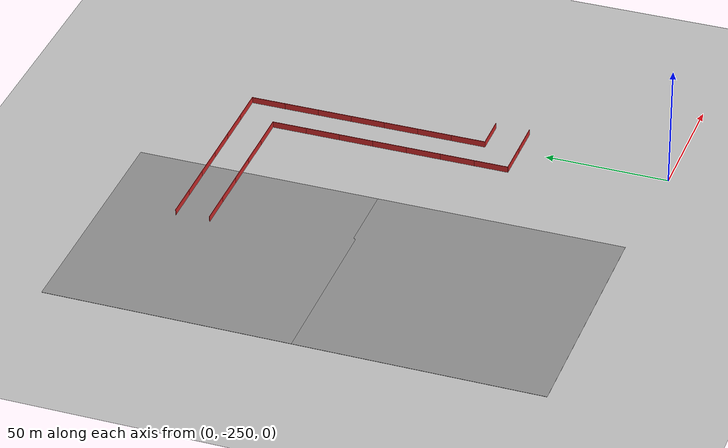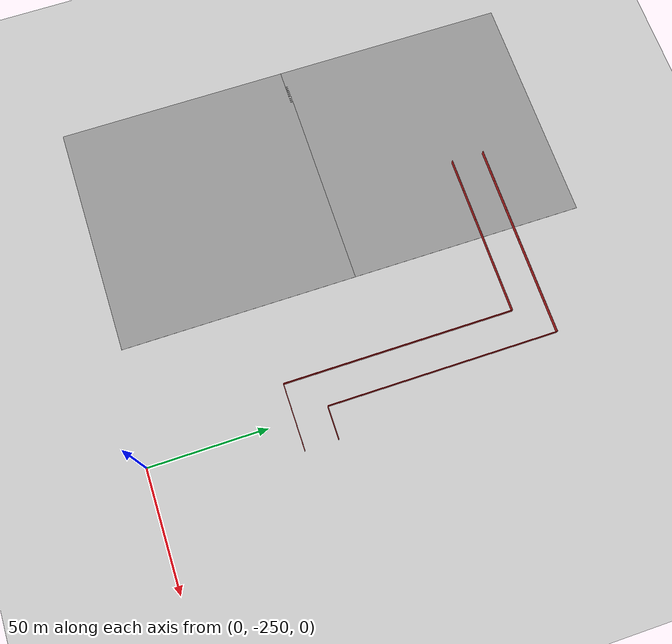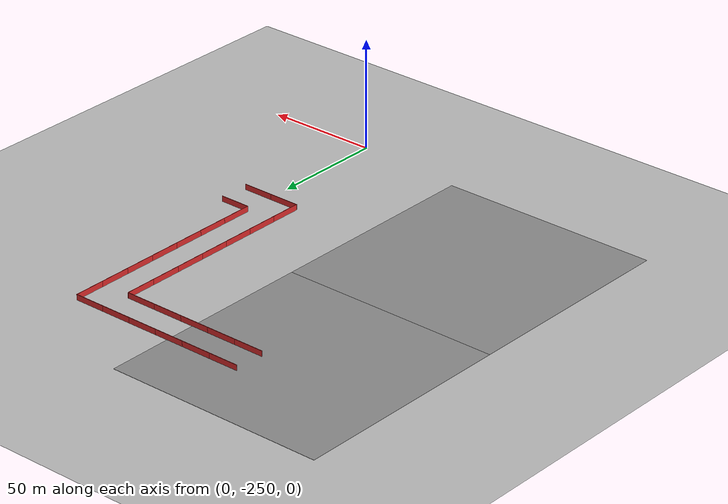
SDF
<sdf version="1.4">
 <world name="default">
  <model name="right_angle_turn_0">
   <link name="Wall_0">
    <collision name="Wall_0_Collision">
     <geometry><box><size>14.1 0.2 2.5</size></box></geometry>
     <pose>0 0 1.25 0 -0 0</pose>
    </collision>
    <visual name="Wall_0_Visual">
     <pose>0 0 1.25 0 -0 0</pose>
     <geometry><box><size>14.1 0.2 2.5</size></box></geometry>
     <material>
      <script>
       <uri>model://materials/scripts</uri>
       <uri>model://materials/textures</uri>
       <name>vrc/red_wall_x4</name>
      </script>
     </material>
    </visual>
    <velocity_decay><linear>0</linear><angular>0</angular></velocity_decay>
    <pose>0 -6.95 0 0 0 -1.5708</pose>
   </link>
   <link name="Wall_10">
    <collision name="Wall_10_Collision">
     <geometry><box><size>13.8 0.2 2.5</size></box></geometry>
     <pose>0 0 1.25 0 -0 0</pose>
    </collision>
    <visual name="Wall_10_Visual">
     <pose>0 0 1.25 0 -0 0</pose>
     <geometry><box><size>13.8 0.2 2.5</size></box></geometry>
     <material>
      <script>
       <uri>model://materials/scripts</uri>
       <uri>model://materials/textures</uri>
       <name>vrc/red_wall_x4</name>
      </script>
     </material>
    </visual>
    <velocity_decay><linear>0</linear><angular>0</angular></velocity_decay>
    <pose>14 7 0 0 0 -1.5708</pose>
   </link>
   <link name="Wall_2">
    <collision name="Wall_2_Collision">
     <geometry><box><size>13.9 0.2 2.5</size></box></geometry>
     <pose>0 0 1.25 0 -0 0</pose>
    </collision>
    <visual name="Wall_2_Visual">
     <pose>0 0 1.25 0 -0 0</pose>
     <geometry><box><size>13.9 0.2 2.5</size></box></geometry>
     <material>
      <script>
       <uri>model://materials/scripts</uri>
       <uri>model://materials/textures</uri>
       <name>vrc/red_wall_x4</name>
      </script>
     </material>
    </visual>
    <velocity_decay><linear>0</linear><angular>0</angular></velocity_decay>
    <pose>-7.05 0 0 0 -0 3.14159</pose>
   </link>
   <link name="Wall_4">
    <collision name="Wall_4_Collision">
     <geometry><box><size>14.1 0.2 2.5</size></box></geometry>
     <pose>0 0 1.25 0 -0 0</pose>
    </collision>
    <visual name="Wall_4_Visual">
     <pose>0 0 1.25 0 -0 0</pose>
     <geometry><box><size>14.1 0.2 2.5</size></box></geometry>
     <material>
      <script>
       <uri>model://materials/scripts</uri>
       <uri>model://materials/textures</uri>
       <name>vrc/red_wall_x4</name>
      </script>
     </material>
    </visual>
    <velocity_decay><linear>0</linear><angular>0</angular></velocity_decay>
    <pose>14 -6.95 0 0 -0 1.5708</pose>
   </link>
   <link name="Wall_6">
    <collision name="Wall_6_Collision">
     <geometry><box><size>14.1 0.2 2.5</size></box></geometry>
     <pose>0 0 1.25 0 -0 0</pose>
    </collision>
    <visual name="Wall_6_Visual">
     <pose>0 0 1.25 0 -0 0</pose>
     <geometry><box><size>14.1 0.2 2.5</size></box></geometry>
     <material>
      <script>
       <uri>model://materials/scripts</uri>
       <uri>model://materials/textures</uri>
       <name>vrc/red_wall_x4</name>
      </script>
     </material>
    </visual>
    <velocity_decay><linear>0</linear><angular>0</angular></velocity_decay>
    <pose>-6.95 14 0 0 -0 0</pose>
   </link>
   <link name="Wall_8">
    <collision name="Wall_8_Collision">
     <geometry><box><size>14 0.2 2.5</size></box></geometry>
     <pose>0 0 1.25 0 -0 0</pose>
    </collision>
    <visual name="Wall_8_Visual">
     <pose>0 0 1.25 0 -0 0</pose>
     <geometry><box><size>14 0.2 2.5</size></box></geometry>
     <material>
      <script>
       <uri>model://materials/scripts</uri>
       <uri>model://materials/textures</uri>
       <name>vrc/red_wall_x4</name>
      </script>
     </material>
    </visual>
    <velocity_decay><linear>0</linear><angular>0</angular></velocity_decay>
    <pose>7.1 14 0 0 -0 0</pose>
   </link>
   <static>1</static>
   <pose>-1 -175 0 0 -0 3.14159</pose>
  </model>
  <model name="staright_28m_2">
   <link name="Wall_26">
    <collision name="Wall_26_Collision">
     <geometry><box><size>14 0.2 2.5</size></box></geometry>
     <pose>0 0 1.25 0 -0 0</pose>
    </collision>
    <visual name="Wall_26_Visual">
     <pose>0 0 1.25 0 -0 0</pose>
     <geometry><box><size>14 0.2 2.5</size></box></geometry>
     <material>
      <script>
       <uri>model://materials/scripts</uri>
       <uri>model://materials/textures</uri>
       <name>vrc/red_wall</name>
      </script>
     </material>
    </visual>
    <velocity_decay><linear>0</linear><angular>0</angular></velocity_decay>
    <pose>-7 -7 0 0 -0 0</pose>
   </link>
   <link name="Wall_28">
    <collision name="Wall_28_Collision">
     <geometry><box><size>14 0.2 2.5</size></box></geometry>
     <pose>0 0 1.25 0 -0 0</pose>
    </collision>
    <visual name="Wall_28_Visual">
     <pose>0 0 1.25 0 -0 0</pose>
     <geometry><box><size>14 0.2 2.5</size></box></geometry>
     <material>
      <script>
       <uri>model://materials/scripts</uri>
       <uri>model://materials/textures</uri>
       <name>vrc/red_wall</name>
      </script>
     </material>
    </visual>
    <velocity_decay><linear>0</linear><angular>0</angular></velocity_decay>
    <pose>-7 7 0 0 -0 0</pose>
   </link>
   <static>1</static>
   <link name="Wall_27">
    <collision name="Wall_26_Collision">
     <geometry><box><size>14 0.2 2.5</size></box></geometry>
     <pose>0 0 1.25 0 -0 0</pose>
    </collision>
    <visual name="Wall_26_Visual">
     <pose>0 0 1.25 0 -0 0</pose>
     <geometry><box><size>14 0.2 2.5</size></box></geometry>
     <material>
      <script>
       <uri>model://materials/scripts</uri>
       <uri>model://materials/textures</uri>
       <name>vrc/red_wall</name>
      </script>
     </material>
    </visual>
    <velocity_decay><linear>0</linear><angular>0</angular></velocity_decay>
    <pose>7 -7 0 0 -0 0</pose>
   </link>
   <link name="Wall_29">
    <collision name="Wall_28_Collision">
     <geometry><box><size>14 0.2 2.5</size></box></geometry>
     <pose>0 0 1.25 0 -0 0</pose>
    </collision>
    <visual name="Wall_28_Visual">
     <pose>0 0 1.25 0 -0 0</pose>
     <geometry><box><size>14 0.2 2.5</size></box></geometry>
     <material>
      <script>
       <uri>model://materials/scripts</uri>
       <uri>model://materials/textures</uri>
       <name>vrc/red_wall</name>
      </script>
     </material>
    </visual>
    <velocity_decay><linear>0</linear><angular>0</angular></velocity_decay>
    <pose>7 7 0 0 -0 0</pose>
   </link>
   <static>1</static>
   <pose>-8.00003 -119 0 0 0 -1.5708</pose>
  </model>
  <model name="right_angle_turn">
   <link name="Wall_0">
    <collision name="Wall_0_Collision">
     <geometry><box><size>14.1 0.2 2.5</size></box></geometry>
     <pose>0 0 1.25 0 -0 0</pose>
    </collision>
    <visual name="Wall_0_Visual">
     <pose>0 0 1.25 0 -0 0</pose>
     <geometry><box><size>14.1 0.2 2.5</size></box></geometry>
     <material>
      <script>
       <uri>model://materials/scripts</uri>
       <uri>model://materials/textures</uri>
       <name>vrc/red_wall_x4</name>
      </script>
     </material>
    </visual>
    <velocity_decay><linear>0</linear><angular>0</angular></velocity_decay>
    <pose>0 -6.95 0 0 0 -1.5708</pose>
   </link>
   <link name="Wall_10">
    <collision name="Wall_10_Collision">
     <geometry><box><size>13.8 0.2 2.5</size></box></geometry>
     <pose>0 0 1.25 0 -0 0</pose>
    </collision>
    <visual name="Wall_10_Visual">
     <pose>0 0 1.25 0 -0 0</pose>
     <geometry><box><size>13.8 0.2 2.5</size></box></geometry>
     <material>
      <script>
       <uri>model://materials/scripts</uri>
       <uri>model://materials/textures</uri>
       <name>vrc/red_wall_x4</name>
      </script>
     </material>
    </visual>
    <velocity_decay><linear>0</linear><angular>0</angular></velocity_decay>
    <pose>14 7 0 0 0 -1.5708</pose>
   </link>
   <link name="Wall_2">
    <collision name="Wall_2_Collision">
     <geometry><box><size>13.9 0.2 2.5</size></box></geometry>
     <pose>0 0 1.25 0 -0 0</pose>
    </collision>
    <visual name="Wall_2_Visual">
     <pose>0 0 1.25 0 -0 0</pose>
     <geometry><box><size>13.9 0.2 2.5</size></box></geometry>
     <material>
      <script>
       <uri>model://materials/scripts</uri>
       <uri>model://materials/textures</uri>
       <name>vrc/red_wall_x4</name>
      </script>
     </material>
    </visual>
    <velocity_decay><linear>0</linear><angular>0</angular></velocity_decay>
    <pose>-7.05 0 0 0 -0 3.14159</pose>
   </link>
   <link name="Wall_4">
    <collision name="Wall_4_Collision">
     <geometry><box><size>14.1 0.2 2.5</size></box></geometry>
     <pose>0 0 1.25 0 -0 0</pose>
    </collision>
    <visual name="Wall_4_Visual">
     <pose>0 0 1.25 0 -0 0</pose>
     <geometry><box><size>14.1 0.2 2.5</size></box></geometry>
     <material>
      <script>
       <uri>model://materials/scripts</uri>
       <uri>model://materials/textures</uri>
       <name>vrc/red_wall_x4</name>
      </script>
     </material>
    </visual>
    <velocity_decay><linear>0</linear><angular>0</angular></velocity_decay>
    <pose>14 -6.95 0 0 -0 1.5708</pose>
   </link>
   <link name="Wall_6">
    <collision name="Wall_6_Collision">
     <geometry><box><size>14.1 0.2 2.5</size></box></geometry>
     <pose>0 0 1.25 0 -0 0</pose>
    </collision>
    <visual name="Wall_6_Visual">
     <pose>0 0 1.25 0 -0 0</pose>
     <geometry><box><size>14.1 0.2 2.5</size></box></geometry>
     <material>
      <script>
       <uri>model://materials/scripts</uri>
       <uri>model://materials/textures</uri>
       <name>vrc/red_wall_x4</name>
      </script>
     </material>
    </visual>
    <velocity_decay><linear>0</linear><angular>0</angular></velocity_decay>
    <pose>-6.95 14 0 0 -0 0</pose>
   </link>
   <link name="Wall_8">
    <collision name="Wall_8_Collision">
     <geometry><box><size>14 0.2 2.5</size></box></geometry>
     <pose>0 0 1.25 0 -0 0</pose>
    </collision>
    <visual name="Wall_8_Visual">
     <pose>0 0 1.25 0 -0 0</pose>
     <geometry><box><size>14 0.2 2.5</size></box></geometry>
     <material>
      <script>
       <uri>model://materials/scripts</uri>
       <uri>model://materials/textures</uri>
       <name>vrc/red_wall_x4</name>
      </script>
     </material>
    </visual>
    <velocity_decay><linear>0</linear><angular>0</angular></velocity_decay>
    <pose>7.1 14 0 0 -0 0</pose>
   </link>
   <static>1</static>
   <pose>-15 -91 0 0 -0 0</pose>
  </model>
  <model name="staright_28m_9">
   <link name="Wall_26">
    <collision name="Wall_26_Collision">
     <geometry><box><size>14 0.2 2.5</size></box></geometry>
     <pose>0 0 1.25 0 -0 0</pose>
    </collision>
    <visual name="Wall_26_Visual">
     <pose>0 0 1.25 0 -0 0</pose>
     <geometry><box><size>14 0.2 2.5</size></box></geometry>
     <material>
      <script>
       <uri>model://materials/scripts</uri>
       <uri>model://materials/textures</uri>
       <name>vrc/red_wall</name>
      </script>
     </material>
    </visual>
    <velocity_decay><linear>0</linear><angular>0</angular></velocity_decay>
    <pose>-7 -7 0 0 -0 0</pose>
   </link>
   <link name="Wall_28">
    <collision name="Wall_28_Collision">
     <geometry><box><size>14 0.2 2.5</size></box></geometry>
     <pose>0 0 1.25 0 -0 0</pose>
    </collision>
    <visual name="Wall_28_Visual">
     <pose>0 0 1.25 0 -0 0</pose>
     <geometry><box><size>14 0.2 2.5</size></box></geometry>
     <material>
      <script>
       <uri>model://materials/scripts</uri>
       <uri>model://materials/textures</uri>
       <name>vrc/red_wall</name>
      </script>
     </material>
    </visual>
    <velocity_decay><linear>0</linear><angular>0</angular></velocity_decay>
    <pose>-7 7 0 0 -0 0</pose>
   </link>
   <static>1</static>
   <link name="Wall_27">
    <collision name="Wall_26_Collision">
     <geometry><box><size>14 0.2 2.5</size></box></geometry>
     <pose>0 0 1.25 0 -0 0</pose>
    </collision>
    <visual name="Wall_26_Visual">
     <pose>0 0 1.25 0 -0 0</pose>
     <geometry><box><size>14 0.2 2.5</size></box></geometry>
     <material>
      <script>
       <uri>model://materials/scripts</uri>
       <uri>model://materials/textures</uri>
       <name>vrc/red_wall</name>
      </script>
     </material>
    </visual>
    <velocity_decay><linear>0</linear><angular>0</angular></velocity_decay>
    <pose>7 -7 0 0 -0 0</pose>
   </link>
   <link name="Wall_29">
    <collision name="Wall_28_Collision">
     <geometry><box><size>14 0.2 2.5</size></box></geometry>
     <pose>0 0 1.25 0 -0 0</pose>
    </collision>
    <visual name="Wall_28_Visual">
     <pose>0 0 1.25 0 -0 0</pose>
     <geometry><box><size>14 0.2 2.5</size></box></geometry>
     <material>
      <script>
       <uri>model://materials/scripts</uri>
       <uri>model://materials/textures</uri>
       <name>vrc/red_wall</name>
      </script>
     </material>
    </visual>
    <velocity_decay><linear>0</linear><angular>0</angular></velocity_decay>
    <pose>7 7 0 0 -0 0</pose>
   </link>
   <static>1</static>
   <pose>-43 -84 0 0 -0 0</pose>
  </model>
  <model name="staright_28m_10">
   <link name="Wall_26">
    <collision name="Wall_26_Collision">
     <geometry><box><size>14 0.2 2.5</size></box></geometry>
     <pose>0 0 1.25 0 -0 0</pose>
    </collision>
    <visual name="Wall_26_Visual">
     <pose>0 0 1.25 0 -0 0</pose>
     <geometry><box><size>14 0.2 2.5</size></box></geometry>
     <material>
      <script>
       <uri>model://materials/scripts</uri>
       <uri>model://materials/textures</uri>
       <name>vrc/red_wall</name>
      </script>
     </material>
    </visual>
    <velocity_decay><linear>0</linear><angular>0</angular></velocity_decay>
    <pose>-7 -7 0 0 -0 0</pose>
   </link>
   <link name="Wall_28">
    <collision name="Wall_28_Collision">
     <geometry><box><size>14 0.2 2.5</size></box></geometry>
     <pose>0 0 1.25 0 -0 0</pose>
    </collision>
    <visual name="Wall_28_Visual">
     <pose>0 0 1.25 0 -0 0</pose>
     <geometry><box><size>14 0.2 2.5</size></box></geometry>
     <material>
      <script>
       <uri>model://materials/scripts</uri>
       <uri>model://materials/textures</uri>
       <name>vrc/red_wall</name>
      </script>
     </material>
    </visual>
    <velocity_decay><linear>0</linear><angular>0</angular></velocity_decay>
    <pose>-7 7 0 0 -0 0</pose>
   </link>
   <static>1</static>
   <link name="Wall_27">
    <collision name="Wall_26_Collision">
     <geometry><box><size>14 0.2 2.5</size></box></geometry>
     <pose>0 0 1.25 0 -0 0</pose>
    </collision>
    <visual name="Wall_26_Visual">
     <pose>0 0 1.25 0 -0 0</pose>
     <geometry><box><size>14 0.2 2.5</size></box></geometry>
     <material>
      <script>
       <uri>model://materials/scripts</uri>
       <uri>model://materials/textures</uri>
       <name>vrc/red_wall</name>
      </script>
     </material>
    </visual>
    <velocity_decay><linear>0</linear><angular>0</angular></velocity_decay>
    <pose>7 -7 0 0 -0 0</pose>
   </link>
   <link name="Wall_29">
    <collision name="Wall_28_Collision">
     <geometry><box><size>14 0.2 2.5</size></box></geometry>
     <pose>0 0 1.25 0 -0 0</pose>
    </collision>
    <visual name="Wall_28_Visual">
     <pose>0 0 1.25 0 -0 0</pose>
     <geometry><box><size>14 0.2 2.5</size></box></geometry>
     <material>
      <script>
       <uri>model://materials/scripts</uri>
       <uri>model://materials/textures</uri>
       <name>vrc/red_wall</name>
      </script>
     </material>
    </visual>
    <velocity_decay><linear>0</linear><angular>0</angular></velocity_decay>
    <pose>7 7 0 0 -0 0</pose>
   </link>
   <static>1</static>
   <pose>-71 -84 0 0 -0 0</pose>
  </model>
  <model name="staright_28m_14">
   <link name="Wall_26">
    <collision name="Wall_26_Collision">
     <geometry><box><size>14 0.2 2.5</size></box></geometry>
     <pose>0 0 1.25 0 -0 0</pose>
    </collision>
    <visual name="Wall_26_Visual">
     <pose>0 0 1.25 0 -0 0</pose>
     <geometry><box><size>14 0.2 2.5</size></box></geometry>
     <material>
      <script>
       <uri>model://materials/scripts</uri>
       <uri>model://materials/textures</uri>
       <name>vrc/red_wall</name>
      </script>
     </material>
    </visual>
    <velocity_decay><linear>0</linear><angular>0</angular></velocity_decay>
    <pose>-7 -7 0 0 -0 0</pose>
   </link>
   <link name="Wall_28">
    <collision name="Wall_28_Collision">
     <geometry><box><size>14 0.2 2.5</size></box></geometry>
     <pose>0 0 1.25 0 -0 0</pose>
    </collision>
    <visual name="Wall_28_Visual">
     <pose>0 0 1.25 0 -0 0</pose>
     <geometry><box><size>14 0.2 2.5</size></box></geometry>
     <material>
      <script>
       <uri>model://materials/scripts</uri>
       <uri>model://materials/textures</uri>
       <name>vrc/red_wall</name>
      </script>
     </material>
    </visual>
    <velocity_decay><linear>0</linear><angular>0</angular></velocity_decay>
    <pose>-7 7 0 0 -0 0</pose>
   </link>
   <static>1</static>
   <link name="Wall_27">
    <collision name="Wall_26_Collision">
     <geometry><box><size>14 0.2 2.5</size></box></geometry>
     <pose>0 0 1.25 0 -0 0</pose>
    </collision>
    <visual name="Wall_26_Visual">
     <pose>0 0 1.25 0 -0 0</pose>
     <geometry><box><size>14 0.2 2.5</size></box></geometry>
     <material>
      <script>
       <uri>model://materials/scripts</uri>
       <uri>model://materials/textures</uri>
       <name>vrc/red_wall</name>
      </script>
     </material>
    </visual>
    <velocity_decay><linear>0</linear><angular>0</angular></velocity_decay>
    <pose>7 -7 0 0 -0 0</pose>
   </link>
   <link name="Wall_29">
    <collision name="Wall_28_Collision">
     <geometry><box><size>14 0.2 2.5</size></box></geometry>
     <pose>0 0 1.25 0 -0 0</pose>
    </collision>
    <visual name="Wall_28_Visual">
     <pose>0 0 1.25 0 -0 0</pose>
     <geometry><box><size>14 0.2 2.5</size></box></geometry>
     <material>
      <script>
       <uri>model://materials/scripts</uri>
       <uri>model://materials/textures</uri>
       <name>vrc/red_wall</name>
      </script>
     </material>
    </visual>
    <velocity_decay><linear>0</linear><angular>0</angular></velocity_decay>
    <pose>7 7 0 0 -0 0</pose>
   </link>
   <static>1</static>
   <pose>-8.00003 -147 0 0 -0 1.5708</pose>
  </model>
  <model name="ground_plane">
   <static>1</static>
   <link name="link">
    <collision name="collision">
     <geometry><plane><normal>0 0 1</normal><size>100 100</size></plane></geometry>
     <surface><friction><ode><mu>100</mu><mu2>50</mu2></ode></friction></surface>
    </collision>
    <visual name="visual">
     <cast_shadows>0</cast_shadows>
     <geometry><plane><normal>0 0 1</normal><size>100 100</size></plane></geometry>
     <material>
      <script><uri>file://media/materials/scripts/gazebo.material</uri><name>Gazebo/Grey</name></script>
     </material>
    </visual>
    <velocity_decay><linear>0</linear><angular>0</angular></velocity_decay>
   </link>
   <pose>1 -98 0 0 -0 0</pose>
  </model>
  <model name="ground_plane_2">
   <static>1</static>
   <link name="link">
    <collision name="collision">
     <geometry><plane><normal>0 0 1</normal><size>100 100</size></plane></geometry>
     <surface><friction><ode><mu>100</mu><mu2>50</mu2></ode></friction></surface>
    </collision>
    <visual name="visual">
     <cast_shadows>0</cast_shadows>
     <geometry><plane><normal>0 0 1</normal><size>100 100</size></plane></geometry>
     <material>
      <script><uri>file://media/materials/scripts/gazebo.material</uri><name>Gazebo/Grey</name></script>
     </material>
    </visual>
    <velocity_decay><linear>0</linear><angular>0</angular></velocity_decay>
   </link>
   <pose>-99 -197 0 0 -0 0</pose>
  </model>
  <model name="ground_plane_3">
   <static>1</static>
   <link name="link">
    <collision name="collision">
     <geometry><plane><normal>0 0 1</normal><size>100 100</size></plane></geometry>
     <surface><friction><ode><mu>100</mu><mu2>50</mu2></ode></friction></surface>
    </collision>
    <visual name="visual">
     <cast_shadows>0</cast_shadows>
     <geometry><plane><normal>0 0 1</normal><size>100 100</size></plane></geometry>
     <material>
      <script><uri>file://media/materials/scripts/gazebo.material</uri><name>Gazebo/Grey</name></script>
     </material>
    </visual>
    <velocity_decay><linear>0</linear><angular>0</angular></velocity_decay>
   </link>
   <pose>-99 -98 0 0 -0 0</pose>
  </model>
 </world>
</sdf>
